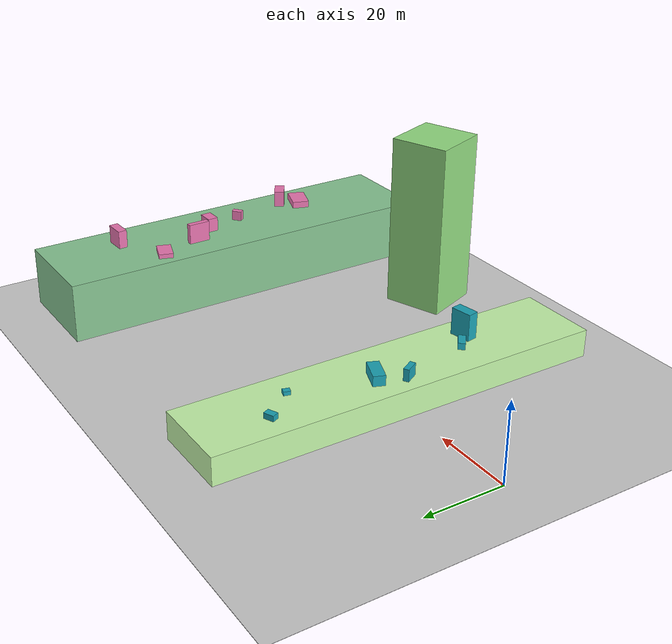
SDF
<sdf version="1.9">
 <world name="map">
  <physics name="1ms" type="ignored">
   <max_step_size>0.001</max_step_size>
   <real_time_factor>1.0</real_time_factor>
  </physics>
  <plugin filename="libgz-sim-physics-system.so" name="gz::sim::systems::Physics"/>
  <plugin filename="libgz-sim-sensors-system.so" name="gz::sim::systems::Sensors">
   <render_engine>ogre2</render_engine>
  </plugin>
  <plugin filename="libgz-sim-contact-system" name="gz::sim::systems::Contact"/>
  <plugin filename="libgz-sim-imu-system" name="gz::sim::systems::Imu"/>
  <plugin filename="gz-sim-air-pressure-system" name="gz::sim::systems::AirPressure"/>
  <plugin filename="gz-sim-magnetometer-system" name="gz::sim::systems::Magnetometer"/>
  <plugin filename="gz-sim-navsat-system" name="gz::sim::systems::NavSat"/>
  <plugin filename="libgz-sim-scene-broadcaster-system.so" name="gz::sim::systems::SceneBroadcaster"/>
  <plugin filename="libgz-sim-user-commands-system.so" name="gz::sim::systems::UserCommands"/>
  <gravity>0 0 -9.8</gravity>
  <magnetic_field>6e-06 2.3e-05 -4.2e-05</magnetic_field>
  <atmosphere type="adiabatic"/>
  <scene>
   <grid>false</grid>
   <ambient>0.4 0.4 0.4 1</ambient>
   <background>0.7 0.7 0.7 1</background>
   <shadows>true</shadows>
  </scene>
  <model name="ground_plane">
   <static>true</static>
   <link name="link">
    <pose>0 0 -0.05 0 0 0</pose>
    <collision name="collision"><geometry><box><size>500 500 0.1</size></box></geometry></collision>
    <visual name="visual">
     <geometry><box><size>500 500 0.1</size></box></geometry>
     <material>
      <ambient>0.8 0.8 0.8 1</ambient>
      <diffuse>0.8 0.8 0.8 1</diffuse>
      <specular>0.8 0.8 0.8 1</specular>
     </material>
    </visual>
   </link>
  </model>
  <light name="sunUTC" type="directional">
   <pose>0 0 500 0 -0 0</pose>
   <intensity>1</intensity>
   <direction>0.001 0.625 -0.78</direction>
   <diffuse>0.904 0.904 0.904 1</diffuse>
   <specular>0.271 0.271 0.271 1</specular>
   <attenuation><range>2000</range><linear>0</linear><constant>1</constant><quadratic>0</quadratic></attenuation>
   <spot><inner_angle>0</inner_angle><outer_angle>0</outer_angle><falloff>0</falloff></spot>
  </light>
  <spherical_coordinates>
   <surface_model>EARTH_WGS84</surface_model>
   <world_frame_orientation>ENU</world_frame_orientation>
   <latitude_deg>35.571199</latitude_deg>
   <longitude_deg>24.175212</longitude_deg>
   <elevation>0</elevation>
  </spherical_coordinates>
  <model name="plane_1">
   <static>true</static>
   <pose>40 0 3.66 0 0 0</pose>
   <link name="link">
    <collision name="collision"><geometry><box><size>20 100 7</size></box></geometry></collision>
    <visual name="visual">
     <geometry><box><size>20 100 7</size></box></geometry>
     <material><ambient>0.773 0.964 0.666 1</ambient><diffuse>0.773 0.964 0.666 1</diffuse></material>
    </visual>
   </link>
  </model>
  <model name="obstacle_hill_1_0">
   <static>true</static>
   <pose>34.274 -1.408 5.126 0 0 222.011</pose>
   <link name="link">
    <collision name="collision"><geometry><box><size>3.625 1.359 10.252</size></box></geometry></collision>
    <visual name="visual">
     <geometry><box><size>3.625 1.359 10.252</size></box></geometry>
     <material><ambient>0.103 0.634 0.703 1</ambient><diffuse>0.103 0.634 0.703 1</diffuse></material>
    </visual>
   </link>
  </model>
  <model name="obstacle_hill_1_1">
   <static>true</static>
   <pose>43.126 -23.514 6.999 0 0 348.89</pose>
   <link name="link">
    <collision name="collision"><geometry><box><size>5.374 2.696 13.999</size></box></geometry></collision>
    <visual name="visual">
     <geometry><box><size>5.374 2.696 13.999</size></box></geometry>
     <material><ambient>0.103 0.634 0.703 1</ambient><diffuse>0.103 0.634 0.703 1</diffuse></material>
    </visual>
   </link>
  </model>
  <model name="obstacle_hill_1_2">
   <static>true</static>
   <pose>36.114 32.708 4.281 0 0 204.632</pose>
   <link name="link">
    <collision name="collision"><geometry><box><size>2.546 1.705 8.562</size></box></geometry></collision>
    <visual name="visual">
     <geometry><box><size>2.546 1.705 8.562</size></box></geometry>
     <material><ambient>0.103 0.634 0.703 1</ambient><diffuse>0.103 0.634 0.703 1</diffuse></material>
    </visual>
   </link>
  </model>
  <model name="obstacle_hill_1_3">
   <static>true</static>
   <pose>39.589 -20.187 4.431 0 0 66.874</pose>
   <link name="link">
    <collision name="collision"><geometry><box><size>1.763 3.96 8.863</size></box></geometry></collision>
    <visual name="visual">
     <geometry><box><size>1.763 3.96 8.863</size></box></geometry>
     <material><ambient>0.103 0.634 0.703 1</ambient><diffuse>0.103 0.634 0.703 1</diffuse></material>
    </visual>
   </link>
  </model>
  <model name="obstacle_hill_1_4">
   <static>true</static>
   <pose>42.705 24.967 4.07 0 0 139.537</pose>
   <link name="link">
    <collision name="collision"><geometry><box><size>1.693 1.452 8.14</size></box></geometry></collision>
    <visual name="visual">
     <geometry><box><size>1.693 1.452 8.14</size></box></geometry>
     <material><ambient>0.103 0.634 0.703 1</ambient><diffuse>0.103 0.634 0.703 1</diffuse></material>
    </visual>
   </link>
  </model>
  <model name="obstacle_hill_1_5">
   <static>true</static>
   <pose>37.759 5.083 4.876 0 0 288.657</pose>
   <link name="link">
    <collision name="collision"><geometry><box><size>6.402 2.934 9.752</size></box></geometry></collision>
    <visual name="visual">
     <geometry><box><size>6.402 2.934 9.752</size></box></geometry>
     <material><ambient>0.103 0.634 0.703 1</ambient><diffuse>0.103 0.634 0.703 1</diffuse></material>
    </visual>
   </link>
  </model>
  <model name="plane_2">
   <static>true</static>
   <pose>112.5 0 7.5 0 0 0</pose>
   <link name="link">
    <collision name="collision"><geometry><box><size>25 100 15</size></box></geometry></collision>
    <visual name="visual">
     <geometry><box><size>25 100 15</size></box></geometry>
     <material><ambient>0.529 0.773 0.574 1</ambient><diffuse>0.529 0.773 0.574 1</diffuse></material>
    </visual>
   </link>
  </model>
  <model name="obstacle_hill_2_0">
   <static>true</static>
   <pose>116.468 30.501 9.839 0 0 274.937</pose>
   <link name="link">
    <collision name="collision"><geometry><box><size>2.242 5.118 19.677</size></box></geometry></collision>
    <visual name="visual">
     <geometry><box><size>2.242 5.118 19.677</size></box></geometry>
     <material><ambient>0.91 0.457 0.687 1</ambient><diffuse>0.91 0.457 0.687 1</diffuse></material>
    </visual>
   </link>
  </model>
  <model name="obstacle_hill_2_1">
   <static>true</static>
   <pose>116.018 -23.048 8.367 0 0 100.198</pose>
   <link name="link">
    <collision name="collision"><geometry><box><size>6.901 4.377 16.733</size></box></geometry></collision>
    <visual name="visual">
     <geometry><box><size>6.901 4.377 16.733</size></box></geometry>
     <material><ambient>0.91 0.457 0.687 1</ambient><diffuse>0.91 0.457 0.687 1</diffuse></material>
    </visual>
   </link>
  </model>
  <model name="obstacle_hill_2_2">
   <static>true</static>
   <pose>113.235 6.012 9.292 0 0 246.639</pose>
   <link name="link">
    <collision name="collision"><geometry><box><size>2.685 4.007 18.584</size></box></geometry></collision>
    <visual name="visual">
     <geometry><box><size>2.685 4.007 18.584</size></box></geometry>
     <material><ambient>0.91 0.457 0.687 1</ambient><diffuse>0.91 0.457 0.687 1</diffuse></material>
    </visual>
   </link>
  </model>
  <model name="obstacle_hill_2_3">
   <static>true</static>
   <pose>107.729 12.093 10.08 0 0 334.592</pose>
   <link name="link">
    <collision name="collision"><geometry><box><size>5.523 1.368 20.161</size></box></geometry></collision>
    <visual name="visual">
     <geometry><box><size>5.523 1.368 20.161</size></box></geometry>
     <material><ambient>0.91 0.457 0.687 1</ambient><diffuse>0.91 0.457 0.687 1</diffuse></material>
    </visual>
   </link>
  </model>
  <model name="obstacle_hill_2_4">
   <static>true</static>
   <pose>105.24 22.954 8.079 0 0 334.254</pose>
   <link name="link">
    <collision name="collision"><geometry><box><size>3.67 5.592 16.159</size></box></geometry></collision>
    <visual name="visual">
     <geometry><box><size>3.67 5.592 16.159</size></box></geometry>
     <material><ambient>0.91 0.457 0.687 1</ambient><diffuse>0.91 0.457 0.687 1</diffuse></material>
    </visual>
   </link>
  </model>
  <model name="obstacle_hill_2_5">
   <static>true</static>
   <pose>118.556 -18.552 9.656 0 0 261.742</pose>
   <link name="link">
    <collision name="collision"><geometry><box><size>2.598 4.879 19.312</size></box></geometry></collision>
    <visual name="visual">
     <geometry><box><size>2.598 4.879 19.312</size></box></geometry>
     <material><ambient>0.91 0.457 0.687 1</ambient><diffuse>0.91 0.457 0.687 1</diffuse></material>
    </visual>
   </link>
  </model>
  <model name="obstacle_hill_2_6">
   <static>true</static>
   <pose>114.812 -3.265 8.774 0 0 262.995</pose>
   <link name="link">
    <collision name="collision"><geometry><box><size>1.479 2.597 17.548</size></box></geometry></collision>
    <visual name="visual">
     <geometry><box><size>1.479 2.597 17.548</size></box></geometry>
     <material><ambient>0.91 0.457 0.687 1</ambient><diffuse>0.91 0.457 0.687 1</diffuse></material>
    </visual>
   </link>
  </model>
  <model name="building">
   <static>true</static>
   <pose>75 -37.5 22.011 0 0 3.505</pose>
   <link name="link">
    <collision name="collision"><geometry><box><size>15 15 44.023</size></box></geometry></collision>
    <visual name="visual">
     <geometry><box><size>15 15 44.023</size></box></geometry>
     <material><ambient>0.58 0.865 0.507 1</ambient><diffuse>0.58 0.865 0.507 1</diffuse></material>
    </visual>
   </link>
  </model>
 </world>
</sdf>
